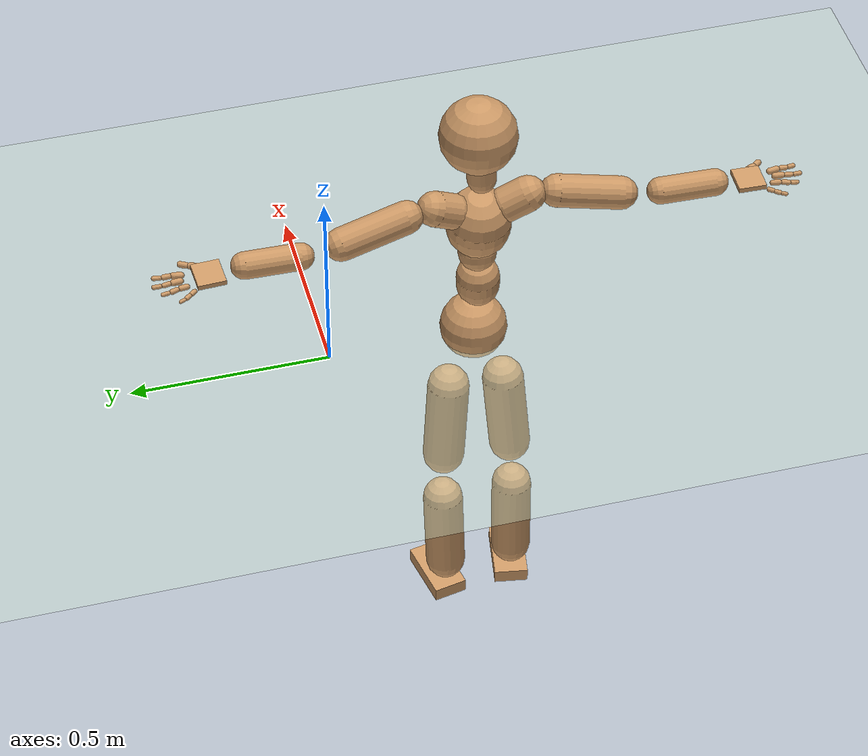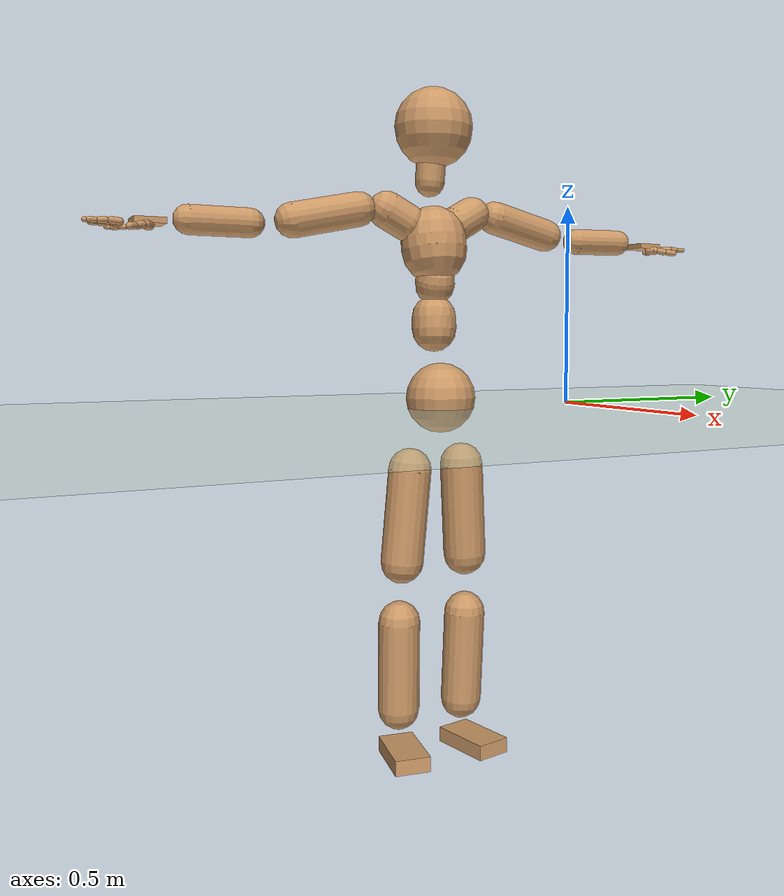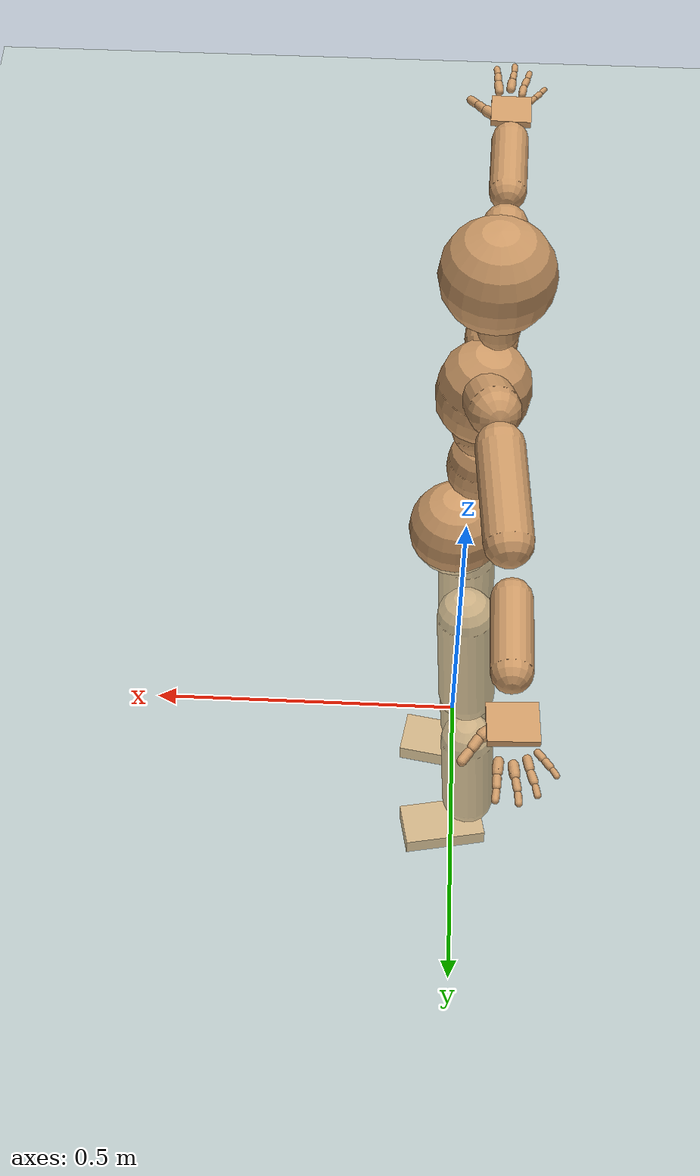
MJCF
<mujoco model="humanoid">
  <compiler coordinate="local" angle="radian"/>
  <default>
    <joint damping="0.0" armature="0.01" stiffness="0.0" limited="true"/>
    <geom conaffinity="1" condim="3" contype="7" margin="0.001" rgba="0.8 0.6 .4 1"/>
  </default>
  <asset>
    <texture type="skybox" builtin="gradient" rgb1=".4 .5 .6" rgb2="0 0 0" width="100" height="100"/>
    <texture builtin="flat" height="1278" mark="cross" markrgb="1 1 1" name="texgeom" random="0.01" rgb1="0.8 0.6 0.4" rgb2="0.8 0.6 0.4" type="cube" width="127"/>
    <texture builtin="checker" height="100" name="texplane" rgb1="0 0 0" rgb2="0.8 0.8 0.8" type="2d" width="100"/>
    <material name="MatPlane" reflectance="0.5" shininess="1" specular="1" texrepeat="60 60" texture="texplane"/>
    <material name="geom" texture="texgeom" texuniform="true"/>
  </asset>
  <worldbody>
    <light cutoff="100" diffuse="1 1 1" dir="-0 0 -1.3" directional="true" exponent="1" pos="0 0 1.3" specular=".1 .1 .1"/>
    <geom conaffinity="1" condim="3" name="floor" pos="0 0 0" rgba="0.8 0.9 0.8 1" size="100 100 .2" type="plane" material="MatPlane"/>
    <body name="Pelvis" pos="0.0003 -0.3683 0.0233">
      <freejoint name="Pelvis"/>
      <geom type="sphere" contype="1" conaffinity="1" density="500" size="0.0848" pos="0.0000 0.0000 0.0000" name="Pelvis"/>
      <body name="L_Hip" pos="-0.0219 0.0657 -0.0922">
        <joint name="L_Hip_x" type="hinge" pos="0 0 0" axis="1 0 0" stiffness="800" damping="80" armature="0.02" range="-180.0000 180.0000"/>
        <joint name="L_Hip_y" type="hinge" pos="0 0 0" axis="0 1 0" stiffness="800" damping="80" armature="0.02" range="-180.0000 180.0000"/>
        <joint name="L_Hip_z" type="hinge" pos="0 0 0" axis="0 0 1" stiffness="800" damping="80" armature="0.02" range="-180.0000 180.0000"/>
        <geom type="capsule" contype="1" conaffinity="1" density="500" fromto="-0.0042 0.0054 -0.0770 -0.0168 0.0216 -0.3081" size="0.053" name="L_Hip"/>
        <body name="L_Knee" pos="-0.021 0.027 -0.3852">
          <joint name="L_Knee_x" type="hinge" pos="0 0 0" axis="1 0 0" stiffness="800" damping="80" armature="0.02" range="-180.0000 180.0000"/>
          <joint name="L_Knee_y" type="hinge" pos="0 0 0" axis="0 1 0" stiffness="800" damping="80" armature="0.02" range="-180.0000 180.0000"/>
          <joint name="L_Knee_z" type="hinge" pos="0 0 0" axis="0 0 1" stiffness="800" damping="80" armature="0.02" range="-180.0000 180.0000"/>
          <geom type="capsule" contype="1" conaffinity="1" density="500" fromto="-0.0039 -0.0013 -0.0764 -0.0157 -0.0054 -0.3057" size="0.0513" name="L_Knee"/>
          <body name="L_Ankle" pos="-0.0197 -0.0067 -0.3821">
            <joint name="L_Ankle_x" type="hinge" pos="0 0 0" axis="1 0 0" stiffness="800" damping="80" armature="0.02" range="-180.0000 180.0000"/>
            <joint name="L_Ankle_y" type="hinge" pos="0 0 0" axis="0 1 0" stiffness="800" damping="80" armature="0.02" range="-180.0000 180.0000"/>
            <joint name="L_Ankle_z" type="hinge" pos="0 0 0" axis="0 0 1" stiffness="800" damping="80" armature="0.02" range="-180.0000 180.0000"/>
            <geom type="box" contype="1" conaffinity="1" density="500" pos="0.0528 0.0102 -0.0216" size="0.0812 0.0437 0.0187" quat="0.9954 0.0000 0.0000 0.0958" name="L_Ankle"/>
            <body name="L_Toe" pos="0.1055 0.0205 -0.0431">
              <joint name="L_Toe_x" type="hinge" pos="0 0 0" axis="1 0 0" stiffness="500" damping="50" armature="0.02" range="-180.0000 180.0000"/>
              <joint name="L_Toe_y" type="hinge" pos="0 0 0" axis="0 1 0" stiffness="500" damping="50" armature="0.02" range="-180.0000 180.0000"/>
              <joint name="L_Toe_z" type="hinge" pos="0 0 0" axis="0 0 1" stiffness="500" damping="50" armature="0.02" range="-180.0000 180.0000"/>
              <geom type="box" contype="1" conaffinity="1" density="500" pos="0.0000 0.0000 0.0228" size="0.0008 0.0022 0.001" quat="0.9947 0.0000 0.0000 0.1029" name="L_Toe"/>
            </body>
          </body>
        </body>
      </body>
      <body name="R_Hip" pos="-0.0232 -0.0648 -0.0991">
        <joint name="R_Hip_x" type="hinge" pos="0 0 0" axis="1 0 0" stiffness="800" damping="80" armature="0.02" range="-180.0000 180.0000"/>
        <joint name="R_Hip_y" type="hinge" pos="0 0 0" axis="0 1 0" stiffness="800" damping="80" armature="0.02" range="-180.0000 180.0000"/>
        <joint name="R_Hip_z" type="hinge" pos="0 0 0" axis="0 0 1" stiffness="800" damping="80" armature="0.02" range="-180.0000 180.0000"/>
        <geom type="capsule" contype="1" conaffinity="1" density="500" fromto="-0.0031 -0.0061 -0.0761 -0.0124 -0.0243 -0.3044" size="0.0528" name="R_Hip"/>
        <body name="R_Knee" pos="-0.0155 -0.0304 -0.3805">
          <joint name="R_Knee_x" type="hinge" pos="0 0 0" axis="1 0 0" stiffness="800" damping="80" armature="0.02" range="-180.0000 180.0000"/>
          <joint name="R_Knee_y" type="hinge" pos="0 0 0" axis="0 1 0" stiffness="800" damping="80" armature="0.02" range="-180.0000 180.0000"/>
          <joint name="R_Knee_z" type="hinge" pos="0 0 0" axis="0 0 1" stiffness="800" damping="80" armature="0.02" range="-180.0000 180.0000"/>
          <geom type="capsule" contype="1" conaffinity="1" density="500" fromto="-0.0031 0.0005 -0.0748 -0.0125 0.0021 -0.2990" size="0.0513" name="R_Knee"/>
          <body name="R_Ankle" pos="-0.0157 0.0027 -0.3738">
            <joint name="R_Ankle_x" type="hinge" pos="0 0 0" axis="1 0 0" stiffness="800" damping="80" armature="0.02" range="-180.0000 180.0000"/>
            <joint name="R_Ankle_y" type="hinge" pos="0 0 0" axis="0 1 0" stiffness="800" damping="80" armature="0.02" range="-180.0000 180.0000"/>
            <joint name="R_Ankle_z" type="hinge" pos="0 0 0" axis="0 0 1" stiffness="800" damping="80" armature="0.02" range="-180.0000 180.0000"/>
            <geom type="box" contype="1" conaffinity="1" density="500" pos="0.0495 -0.0084 -0.0236" size="0.0812 0.0437 0.0187" quat="0.9965 0.0000 0.0000 -0.0839" name="R_Ankle"/>
            <body name="R_Toe" pos="0.099 -0.0168 -0.0471">
              <joint name="R_Toe_x" type="hinge" pos="0 0 0" axis="1 0 0" stiffness="500" damping="50" armature="0.02" range="-180.0000 180.0000"/>
              <joint name="R_Toe_y" type="hinge" pos="0 0 0" axis="0 1 0" stiffness="500" damping="50" armature="0.02" range="-180.0000 180.0000"/>
              <joint name="R_Toe_z" type="hinge" pos="0 0 0" axis="0 0 1" stiffness="500" damping="50" armature="0.02" range="-180.0000 180.0000"/>
              <geom type="box" contype="1" conaffinity="1" density="500" pos="0.0000 0.0000 0.0247" size="0.0008 0.0022 0.001" quat="0.9974 0.0000 0.0000 -0.0727" name="R_Toe"/>
            </body>
          </body>
        </body>
      </body>
      <body name="Torso" pos="-0.0248 -0.0044 0.1056">
        <joint name="Torso_x" type="hinge" pos="0 0 0" axis="1 0 0" stiffness="1000" damping="100" armature="0.02" range="-180.0000 180.0000"/>
        <joint name="Torso_y" type="hinge" pos="0 0 0" axis="0 1 0" stiffness="1000" damping="100" armature="0.02" range="-180.0000 180.0000"/>
        <joint name="Torso_z" type="hinge" pos="0 0 0" axis="0 0 1" stiffness="1000" damping="100" armature="0.02" range="-180.0000 180.0000"/>
        <geom type="capsule" contype="1" conaffinity="1" density="500" fromto="-0.0070 0.0031 0.0887 -0.0047 0.0021 0.0592" size="0.0539" name="Torso"/>
        <body name="Spine" pos="-0.0117 0.0052 0.1479">
          <joint name="Spine_x" type="hinge" pos="0 0 0" axis="1 0 0" stiffness="1000" damping="100" armature="0.02" range="-180.0000 180.0000"/>
          <joint name="Spine_y" type="hinge" pos="0 0 0" axis="0 1 0" stiffness="1000" damping="100" armature="0.02" range="-180.0000 180.0000"/>
          <joint name="Spine_z" type="hinge" pos="0 0 0" axis="0 0 1" stiffness="1000" damping="100" armature="0.02" range="-180.0000 180.0000"/>
          <geom type="capsule" contype="1" conaffinity="1" density="500" fromto="0.0099 -0.0011 0.0293 0.0066 -0.0007 0.0195" size="0.0481" name="Spine"/>
          <body name="Chest" pos="0.0165 -0.0018 0.0489">
            <joint name="Chest_x" type="hinge" pos="0 0 0" axis="1 0 0" stiffness="1000" damping="100" armature="0.02" range="-180.0000 180.0000"/>
            <joint name="Chest_y" type="hinge" pos="0 0 0" axis="0 1 0" stiffness="1000" damping="100" armature="0.02" range="-180.0000 180.0000"/>
            <joint name="Chest_z" type="hinge" pos="0 0 0" axis="0 0 1" stiffness="1000" damping="100" armature="0.02" range="-180.0000 180.0000"/>
            <geom type="capsule" contype="1" conaffinity="1" density="500" fromto="-0.0116 -0.0015 0.0803 -0.0077 -0.0010 0.0536" size="0.0797" name="Chest"/>
            <body name="Neck" pos="-0.0285 -0.0051 0.1864">
              <joint name="Neck_x" type="hinge" pos="0 0 0" axis="1 0 0" stiffness="500" damping="50" armature="0.02" range="-180.0000 180.0000"/>
              <joint name="Neck_y" type="hinge" pos="0 0 0" axis="0 1 0" stiffness="500" damping="50" armature="0.02" range="-180.0000 180.0000"/>
              <joint name="Neck_z" type="hinge" pos="0 0 0" axis="0 0 1" stiffness="500" damping="50" armature="0.02" range="-180.0000 180.0000"/>
              <geom type="capsule" contype="1" conaffinity="1" density="500" fromto="0.0022 0.0016 0.0318 0.0089 0.0065 0.1273" size="0.0361" name="Neck"/>
              <body name="Head" pos="0.0111 0.0081 0.1591">
                <joint name="Head_x" type="hinge" pos="0 0 0" axis="1 0 0" stiffness="500" damping="50" armature="0.02" range="-180.0000 180.0000"/>
                <joint name="Head_y" type="hinge" pos="0 0 0" axis="0 1 0" stiffness="500" damping="50" armature="0.02" range="-180.0000 180.0000"/>
                <joint name="Head_z" type="hinge" pos="0 0 0" axis="0 0 1" stiffness="500" damping="50" armature="0.02" range="-180.0000 180.0000"/>
                <geom type="sphere" contype="1" conaffinity="1" density="500" size="0.0950" pos="0.0000 0.0000 0.0000" name="Head"/>
              </body>
            </body>
            <body name="L_Thorax" pos="-0.0125 0.0452 0.1093">
              <joint name="L_Thorax_x" type="hinge" pos="0 0 0" axis="1 0 0" stiffness="500" damping="50" armature="0.02" range="-180.0000 180.0000"/>
              <joint name="L_Thorax_y" type="hinge" pos="0 0 0" axis="0 1 0" stiffness="500" damping="50" armature="0.02" range="-180.0000 180.0000"/>
              <joint name="L_Thorax_z" type="hinge" pos="0 0 0" axis="0 0 1" stiffness="500" damping="50" armature="0.02" range="-180.0000 180.0000"/>
              <geom type="capsule" contype="1" conaffinity="1" density="500" fromto="-0.0031 0.0164 0.0091 -0.0122 0.0657 0.0363" size="0.0439" name="L_Thorax"/>
              <body name="L_Shoulder" pos="-0.0153 0.0821 0.0454">
                <joint name="L_Shoulder_x" type="hinge" pos="0 0 0" axis="1 0 0" stiffness="500" damping="50" armature="0.02" range="-180.0000 180.0000"/>
                <joint name="L_Shoulder_y" type="hinge" pos="0 0 0" axis="0 1 0" stiffness="500" damping="50" armature="0.02" range="-180.0000 180.0000"/>
                <joint name="L_Shoulder_z" type="hinge" pos="0 0 0" axis="0 0 1" stiffness="500" damping="50" armature="0.02" range="-180.0000 180.0000"/>
                <geom type="capsule" contype="1" conaffinity="1" density="500" fromto="-0.0052 0.0546 -0.0117 -0.0208 0.2183 -0.0469" size="0.0409" name="L_Shoulder"/>
                <body name="L_Elbow" pos="-0.026 0.2728 -0.0586">
                  <joint name="L_Elbow_x" type="hinge" pos="0 0 0" axis="1 0 0" stiffness="500" damping="50" armature="0.02" range="-720.0000 720.0000"/>
                  <joint name="L_Elbow_y" type="hinge" pos="0 0 0" axis="0 1 0" stiffness="500" damping="50" armature="0.02" range="-720.0000 720.0000"/>
                  <joint name="L_Elbow_z" type="hinge" pos="0 0 0" axis="0 0 1" stiffness="500" damping="50" armature="0.02" range="-720.0000 720.0000"/>
                  <geom type="capsule" contype="1" conaffinity="1" density="500" fromto="0.0001 0.0451 0.0009 0.0005 0.1806 0.0036" size="0.0334" name="L_Elbow"/>
                  <body name="L_Wrist" pos="0.0007 0.2257 0.0046">
                    <joint name="L_Wrist_x" type="hinge" pos="0 0 0" axis="1 0 0" stiffness="300" damping="30" armature="0.02" range="-180.0000 180.0000"/>
                    <joint name="L_Wrist_y" type="hinge" pos="0 0 0" axis="0 1 0" stiffness="300" damping="30" armature="0.02" range="-180.0000 180.0000"/>
                    <joint name="L_Wrist_z" type="hinge" pos="0 0 0" axis="0 0 1" stiffness="300" damping="30" armature="0.02" range="-180.0000 180.0000"/>
                    <geom type="box" contype="1" conaffinity="1" density="500" pos="-0.0018 0.0413 -0.0083" size="0.0345 0.0392 0.0063" quat="0.7222 0.0000 0.0000 -0.6917" name="L_Wrist"/>
                    <body name="L_Index1" pos="0.0185 0.097 -0.0151">
                      <joint name="L_Index1_x" type="hinge" pos="0 0 0" axis="1 0 0" stiffness="100" damping="10" armature="0.02" range="-180.0000 180.0000"/>
                      <joint name="L_Index1_y" type="hinge" pos="0 0 0" axis="0 1 0" stiffness="100" damping="10" armature="0.02" range="-180.0000 180.0000"/>
                      <joint name="L_Index1_z" type="hinge" pos="0 0 0" axis="0 0 1" stiffness="100" damping="10" armature="0.02" range="-180.0000 180.0000"/>
                      <geom type="capsule" contype="1" conaffinity="1" density="500" fromto="0.0005 0.0061 0.0005 0.0021 0.0243 0.0019" size="0.0081" name="L_Index1"/>
                      <body name="L_Index2" pos="0.0026 0.0303 0.0024">
                        <joint name="L_Index2_x" type="hinge" pos="0 0 0" axis="1 0 0" stiffness="100" damping="10" armature="0.02" range="-180.0000 180.0000"/>
                        <joint name="L_Index2_y" type="hinge" pos="0 0 0" axis="0 1 0" stiffness="100" damping="10" armature="0.02" range="-180.0000 180.0000"/>
                        <joint name="L_Index2_z" type="hinge" pos="0 0 0" axis="0 0 1" stiffness="100" damping="10" armature="0.02" range="-180.0000 180.0000"/>
                        <geom type="capsule" contype="1" conaffinity="1" density="500" fromto="0.0001 0.0043 -0.0003 0.0004 0.0173 -0.0012" size="0.0068" name="L_Index2"/>
                        <body name="L_Index3" pos="0.0005 0.0216 -0.0015">
                          <joint name="L_Index3_x" type="hinge" pos="0 0 0" axis="1 0 0" stiffness="100" damping="10" armature="0.02" range="-180.0000 180.0000"/>
                          <joint name="L_Index3_y" type="hinge" pos="0 0 0" axis="0 1 0" stiffness="100" damping="10" armature="0.02" range="-180.0000 180.0000"/>
                          <joint name="L_Index3_z" type="hinge" pos="0 0 0" axis="0 0 1" stiffness="100" damping="10" armature="0.02" range="-180.0000 180.0000"/>
                          <geom type="capsule" contype="1" conaffinity="1" density="500" fromto="0.0005 0.0047 0.0001 0.0020 0.0189 0.0004" size="0.0058" name="L_Index3"/>
                        </body>
                      </body>
                    </body>
                    <body name="L_Middle1" pos="-0.0017 0.1032 -0.0129">
                      <joint name="L_Middle1_x" type="hinge" pos="0 0 0" axis="1 0 0" stiffness="100" damping="10" armature="0.02" range="-180.0000 180.0000"/>
                      <joint name="L_Middle1_y" type="hinge" pos="0 0 0" axis="0 1 0" stiffness="100" damping="10" armature="0.02" range="-180.0000 180.0000"/>
                      <joint name="L_Middle1_z" type="hinge" pos="0 0 0" axis="0 0 1" stiffness="100" damping="10" armature="0.02" range="-180.0000 180.0000"/>
                      <geom type="capsule" contype="1" conaffinity="1" density="500" fromto="-0.0007 0.0057 0.0002 -0.0028 0.0228 0.0009" size="0.0082" name="L_Middle1"/>
                      <body name="L_Middle2" pos="-0.0035 0.0285 0.0012">
                        <joint name="L_Middle2_x" type="hinge" pos="0 0 0" axis="1 0 0" stiffness="100" damping="10" armature="0.02" range="-180.0000 180.0000"/>
                        <joint name="L_Middle2_y" type="hinge" pos="0 0 0" axis="0 1 0" stiffness="100" damping="10" armature="0.02" range="-180.0000 180.0000"/>
                        <joint name="L_Middle2_z" type="hinge" pos="0 0 0" axis="0 0 1" stiffness="100" damping="10" armature="0.02" range="-180.0000 180.0000"/>
                        <geom type="capsule" contype="1" conaffinity="1" density="500" fromto="-0.0007 0.0044 -0.0001 -0.0028 0.0177 -0.0003" size="0.0062" name="L_Middle2"/>
                        <body name="L_Middle3" pos="-0.0035 0.0222 -0.0004">
                          <joint name="L_Middle3_x" type="hinge" pos="0 0 0" axis="1 0 0" stiffness="100" damping="10" armature="0.02" range="-180.0000 180.0000"/>
                          <joint name="L_Middle3_y" type="hinge" pos="0 0 0" axis="0 1 0" stiffness="100" damping="10" armature="0.02" range="-180.0000 180.0000"/>
                          <joint name="L_Middle3_z" type="hinge" pos="0 0 0" axis="0 0 1" stiffness="100" damping="10" armature="0.02" range="-180.0000 180.0000"/>
                          <geom type="capsule" contype="1" conaffinity="1" density="500" fromto="-0.0003 0.0048 0.0003 -0.0012 0.0193 0.0013" size="0.0056" name="L_Middle3"/>
                        </body>
                      </body>
                    </body>
                    <body name="L_Pinky1" pos="-0.0363 0.0795 -0.0194">
                      <joint name="L_Pinky1_x" type="hinge" pos="0 0 0" axis="1 0 0" stiffness="100" damping="10" armature="0.02" range="-180.0000 180.0000"/>
                      <joint name="L_Pinky1_y" type="hinge" pos="0 0 0" axis="0 1 0" stiffness="100" damping="10" armature="0.02" range="-180.0000 180.0000"/>
                      <joint name="L_Pinky1_z" type="hinge" pos="0 0 0" axis="0 0 1" stiffness="100" damping="10" armature="0.02" range="-180.0000 180.0000"/>
                      <geom type="capsule" contype="1" conaffinity="1" density="500" fromto="-0.0022 0.0028 -0.0000 -0.0088 0.0110 -0.0001" size="0.006" name="L_Pinky1"/>
                      <body name="L_Pinky2" pos="-0.011 0.0138 -0.0002">
                        <joint name="L_Pinky2_x" type="hinge" pos="0 0 0" axis="1 0 0" stiffness="100" damping="10" armature="0.02" range="-180.0000 180.0000"/>
                        <joint name="L_Pinky2_y" type="hinge" pos="0 0 0" axis="0 1 0" stiffness="100" damping="10" armature="0.02" range="-180.0000 180.0000"/>
                        <joint name="L_Pinky2_z" type="hinge" pos="0 0 0" axis="0 0 1" stiffness="100" damping="10" armature="0.02" range="-180.0000 180.0000"/>
                        <geom type="capsule" contype="1" conaffinity="1" density="500" fromto="-0.0022 0.0028 -0.0001 -0.0087 0.0113 -0.0005" size="0.0058" name="L_Pinky2"/>
                        <body name="L_Pinky3" pos="-0.0109 0.0141 -0.0006">
                          <joint name="L_Pinky3_x" type="hinge" pos="0 0 0" axis="1 0 0" stiffness="100" damping="10" armature="0.02" range="-180.0000 180.0000"/>
                          <joint name="L_Pinky3_y" type="hinge" pos="0 0 0" axis="0 1 0" stiffness="100" damping="10" armature="0.02" range="-180.0000 180.0000"/>
                          <joint name="L_Pinky3_z" type="hinge" pos="0 0 0" axis="0 0 1" stiffness="100" damping="10" armature="0.02" range="-180.0000 180.0000"/>
                          <geom type="capsule" contype="1" conaffinity="1" density="500" fromto="-0.0018 0.0032 0.0003 -0.0071 0.0129 0.0011" size="0.0047" name="L_Pinky3"/>
                        </body>
                      </body>
                    </body>
                    <body name="L_Ring1" pos="-0.0218 0.0917 -0.0151">
                      <joint name="L_Ring1_x" type="hinge" pos="0 0 0" axis="1 0 0" stiffness="100" damping="10" armature="0.02" range="-180.0000 180.0000"/>
                      <joint name="L_Ring1_y" type="hinge" pos="0 0 0" axis="0 1 0" stiffness="100" damping="10" armature="0.02" range="-180.0000 180.0000"/>
                      <joint name="L_Ring1_z" type="hinge" pos="0 0 0" axis="0 0 1" stiffness="100" damping="10" armature="0.02" range="-180.0000 180.0000"/>
                      <geom type="capsule" contype="1" conaffinity="1" density="500" fromto="-0.0010 0.0051 0.0003 -0.0039 0.0205 0.0012" size="0.0071" name="L_Ring1"/>
                      <body name="L_Ring2" pos="-0.0049 0.0256 0.0015">
                        <joint name="L_Ring2_x" type="hinge" pos="0 0 0" axis="1 0 0" stiffness="100" damping="10" armature="0.02" range="-180.0000 180.0000"/>
                        <joint name="L_Ring2_y" type="hinge" pos="0 0 0" axis="0 1 0" stiffness="100" damping="10" armature="0.02" range="-180.0000 180.0000"/>
                        <joint name="L_Ring2_z" type="hinge" pos="0 0 0" axis="0 0 1" stiffness="100" damping="10" armature="0.02" range="-180.0000 180.0000"/>
                        <geom type="capsule" contype="1" conaffinity="1" density="500" fromto="-0.0013 0.0043 -0.0002 -0.0053 0.0170 -0.0007" size="0.0066" name="L_Ring2"/>
                        <body name="L_Ring3" pos="-0.0066 0.0213 -0.0008">
                          <joint name="L_Ring3_x" type="hinge" pos="0 0 0" axis="1 0 0" stiffness="100" damping="10" armature="0.02" range="-180.0000 180.0000"/>
                          <joint name="L_Ring3_y" type="hinge" pos="0 0 0" axis="0 1 0" stiffness="100" damping="10" armature="0.02" range="-180.0000 180.0000"/>
                          <joint name="L_Ring3_z" type="hinge" pos="0 0 0" axis="0 0 1" stiffness="100" damping="10" armature="0.02" range="-180.0000 180.0000"/>
                          <geom type="capsule" contype="1" conaffinity="1" density="500" fromto="-0.0009 0.0047 0.0002 -0.0037 0.0186 0.0009" size="0.0053" name="L_Ring3"/>
                        </body>
                      </body>
                    </body>
                    <body name="L_Thumb1" pos="0.0235 0.0412 -0.021">
                      <joint name="L_Thumb1_x" type="hinge" pos="0 0 0" axis="1 0 0" stiffness="100" damping="10" armature="0.02" range="-180.0000 180.0000"/>
                      <joint name="L_Thumb1_y" type="hinge" pos="0 0 0" axis="0 1 0" stiffness="100" damping="10" armature="0.02" range="-180.0000 180.0000"/>
                      <joint name="L_Thumb1_z" type="hinge" pos="0 0 0" axis="0 0 1" stiffness="100" damping="10" armature="0.02" range="-180.0000 180.0000"/>
                      <geom type="capsule" contype="1" conaffinity="1" density="500" fromto="0.0044 0.0034 0.0001 0.0175 0.0135 0.0002" size="0.0106" name="L_Thumb1"/>
                      <body name="L_Thumb2" pos="0.0219 0.0169 0.0003">
                        <joint name="L_Thumb2_x" type="hinge" pos="0 0 0" axis="1 0 0" stiffness="100" damping="10" armature="0.02" range="-180.0000 180.0000"/>
                        <joint name="L_Thumb2_y" type="hinge" pos="0 0 0" axis="0 1 0" stiffness="100" damping="10" armature="0.02" range="-180.0000 180.0000"/>
                        <joint name="L_Thumb2_z" type="hinge" pos="0 0 0" axis="0 0 1" stiffness="100" damping="10" armature="0.02" range="-180.0000 180.0000"/>
                        <geom type="capsule" contype="1" conaffinity="1" density="500" fromto="0.0027 0.0040 -0.0010 0.0107 0.0160 -0.0041" size="0.0084" name="L_Thumb2"/>
                        <body name="L_Thumb3" pos="0.0134 0.02 -0.0051">
                          <joint name="L_Thumb3_x" type="hinge" pos="0 0 0" axis="1 0 0" stiffness="100" damping="10" armature="0.02" range="-180.0000 180.0000"/>
                          <joint name="L_Thumb3_y" type="hinge" pos="0 0 0" axis="0 1 0" stiffness="100" damping="10" armature="0.02" range="-180.0000 180.0000"/>
                          <joint name="L_Thumb3_z" type="hinge" pos="0 0 0" axis="0 0 1" stiffness="100" damping="10" armature="0.02" range="-180.0000 180.0000"/>
                          <geom type="capsule" contype="1" conaffinity="1" density="500" fromto="0.0031 0.0044 -0.0006 0.0123 0.0176 -0.0025" size="0.0078" name="L_Thumb3"/>
                        </body>
                      </body>
                    </body>
                  </body>
                </body>
              </body>
            </body>
            <body name="R_Thorax" pos="-0.0168 -0.0477 0.106">
              <joint name="R_Thorax_x" type="hinge" pos="0 0 0" axis="1 0 0" stiffness="500" damping="50" armature="0.02" range="-180.0000 180.0000"/>
              <joint name="R_Thorax_y" type="hinge" pos="0 0 0" axis="0 1 0" stiffness="500" damping="50" armature="0.02" range="-180.0000 180.0000"/>
              <joint name="R_Thorax_z" type="hinge" pos="0 0 0" axis="0 0 1" stiffness="500" damping="50" armature="0.02" range="-180.0000 180.0000"/>
              <geom type="capsule" contype="1" conaffinity="1" density="500" fromto="-0.0022 -0.0176 0.0096 -0.0089 -0.0705 0.0386" size="0.0447" name="R_Thorax"/>
              <body name="R_Shoulder" pos="-0.0111 -0.0881 0.0482">
                <joint name="R_Shoulder_x" type="hinge" pos="0 0 0" axis="1 0 0" stiffness="500" damping="50" armature="0.02" range="-180.0000 180.0000"/>
                <joint name="R_Shoulder_y" type="hinge" pos="0 0 0" axis="0 1 0" stiffness="500" damping="50" armature="0.02" range="-180.0000 180.0000"/>
                <joint name="R_Shoulder_z" type="hinge" pos="0 0 0" axis="0 0 1" stiffness="500" damping="50" armature="0.02" range="-180.0000 180.0000"/>
                <geom type="capsule" contype="1" conaffinity="1" density="500" fromto="-0.0038 -0.0526 -0.0110 -0.0153 -0.2105 -0.0438" size="0.0412" name="R_Shoulder"/>
                <body name="R_Elbow" pos="-0.0191 -0.2632 -0.0548">
                  <joint name="R_Elbow_x" type="hinge" pos="0 0 0" axis="1 0 0" stiffness="500" damping="50" armature="0.02" range="-720.0000 720.0000"/>
                  <joint name="R_Elbow_y" type="hinge" pos="0 0 0" axis="0 1 0" stiffness="500" damping="50" armature="0.02" range="-720.0000 720.0000"/>
                  <joint name="R_Elbow_z" type="hinge" pos="0 0 0" axis="0 0 1" stiffness="500" damping="50" armature="0.02" range="-720.0000 720.0000"/>
                  <geom type="capsule" contype="1" conaffinity="1" density="500" fromto="-0.0015 -0.0454 0.0001 -0.0059 -0.1815 0.0005" size="0.0336" name="R_Elbow"/>
                  <body name="R_Wrist" pos="-0.0073 -0.2269 0.0006">
                    <joint name="R_Wrist_x" type="hinge" pos="0 0 0" axis="1 0 0" stiffness="300" damping="30" armature="0.02" range="-180.0000 180.0000"/>
                    <joint name="R_Wrist_y" type="hinge" pos="0 0 0" axis="0 1 0" stiffness="300" damping="30" armature="0.02" range="-180.0000 180.0000"/>
                    <joint name="R_Wrist_z" type="hinge" pos="0 0 0" axis="0 0 1" stiffness="300" damping="30" armature="0.02" range="-180.0000 180.0000"/>
                    <geom type="box" contype="1" conaffinity="1" density="500" pos="-0.0012 -0.0407 -0.0080" size="0.0345 0.0367 0.0065" quat="0.7171 0.0000 0.0000 0.6970" name="R_Wrist"/>
                    <body name="R_Index1" pos="0.0197 -0.0959 -0.0144">
                      <joint name="R_Index1_x" type="hinge" pos="0 0 0" axis="1 0 0" stiffness="100" damping="10" armature="0.02" range="-180.0000 180.0000"/>
                      <joint name="R_Index1_y" type="hinge" pos="0 0 0" axis="0 1 0" stiffness="100" damping="10" armature="0.02" range="-180.0000 180.0000"/>
                      <joint name="R_Index1_z" type="hinge" pos="0 0 0" axis="0 0 1" stiffness="100" damping="10" armature="0.02" range="-180.0000 180.0000"/>
                      <geom type="capsule" contype="1" conaffinity="1" density="500" fromto="0.0005 -0.0061 0.0005 0.0021 -0.0243 0.0019" size="0.0081" name="R_Index1"/>
                      <body name="R_Index2" pos="0.0026 -0.0303 0.0024">
                        <joint name="R_Index2_x" type="hinge" pos="0 0 0" axis="1 0 0" stiffness="100" damping="10" armature="0.02" range="-180.0000 180.0000"/>
                        <joint name="R_Index2_y" type="hinge" pos="0 0 0" axis="0 1 0" stiffness="100" damping="10" armature="0.02" range="-180.0000 180.0000"/>
                        <joint name="R_Index2_z" type="hinge" pos="0 0 0" axis="0 0 1" stiffness="100" damping="10" armature="0.02" range="-180.0000 180.0000"/>
                        <geom type="capsule" contype="1" conaffinity="1" density="500" fromto="0.0001 -0.0043 -0.0003 0.0004 -0.0173 -0.0012" size="0.0068" name="R_Index2"/>
                        <body name="R_Index3" pos="0.0005 -0.0216 -0.0015">
                          <joint name="R_Index3_x" type="hinge" pos="0 0 0" axis="1 0 0" stiffness="100" damping="10" armature="0.02" range="-180.0000 180.0000"/>
                          <joint name="R_Index3_y" type="hinge" pos="0 0 0" axis="0 1 0" stiffness="100" damping="10" armature="0.02" range="-180.0000 180.0000"/>
                          <joint name="R_Index3_z" type="hinge" pos="0 0 0" axis="0 0 1" stiffness="100" damping="10" armature="0.02" range="-180.0000 180.0000"/>
                          <geom type="capsule" contype="1" conaffinity="1" density="500" fromto="0.0005 -0.0039 0.0001 0.0020 -0.0157 0.0004" size="0.006" name="R_Index3"/>
                        </body>
                      </body>
                    </body>
                    <body name="R_Middle1" pos="-0.0004 -0.1021 -0.0123">
                      <joint name="R_Middle1_x" type="hinge" pos="0 0 0" axis="1 0 0" stiffness="100" damping="10" armature="0.02" range="-180.0000 180.0000"/>
                      <joint name="R_Middle1_y" type="hinge" pos="0 0 0" axis="0 1 0" stiffness="100" damping="10" armature="0.02" range="-180.0000 180.0000"/>
                      <joint name="R_Middle1_z" type="hinge" pos="0 0 0" axis="0 0 1" stiffness="100" damping="10" armature="0.02" range="-180.0000 180.0000"/>
                      <geom type="capsule" contype="1" conaffinity="1" density="500" fromto="-0.0007 -0.0057 0.0002 -0.0028 -0.0228 0.0009" size="0.0082" name="R_Middle1"/>
                      <body name="R_Middle2" pos="-0.0035 -0.0285 0.0012">
                        <joint name="R_Middle2_x" type="hinge" pos="0 0 0" axis="1 0 0" stiffness="100" damping="10" armature="0.02" range="-180.0000 180.0000"/>
                        <joint name="R_Middle2_y" type="hinge" pos="0 0 0" axis="0 1 0" stiffness="100" damping="10" armature="0.02" range="-180.0000 180.0000"/>
                        <joint name="R_Middle2_z" type="hinge" pos="0 0 0" axis="0 0 1" stiffness="100" damping="10" armature="0.02" range="-180.0000 180.0000"/>
                        <geom type="capsule" contype="1" conaffinity="1" density="500" fromto="-0.0007 -0.0044 -0.0001 -0.0028 -0.0177 -0.0003" size="0.0062" name="R_Middle2"/>
                        <body name="R_Middle3" pos="-0.0035 -0.0222 -0.0004">
                          <joint name="R_Middle3_x" type="hinge" pos="0 0 0" axis="1 0 0" stiffness="100" damping="10" armature="0.02" range="-180.0000 180.0000"/>
                          <joint name="R_Middle3_y" type="hinge" pos="0 0 0" axis="0 1 0" stiffness="100" damping="10" armature="0.02" range="-180.0000 180.0000"/>
                          <joint name="R_Middle3_z" type="hinge" pos="0 0 0" axis="0 0 1" stiffness="100" damping="10" armature="0.02" range="-180.0000 180.0000"/>
                          <geom type="capsule" contype="1" conaffinity="1" density="500" fromto="-0.0003 -0.0040 0.0003 -0.0012 -0.0161 0.0013" size="0.0058" name="R_Middle3"/>
                        </body>
                      </body>
                    </body>
                    <body name="R_Pinky1" pos="-0.035 -0.0784 -0.0188">
                      <joint name="R_Pinky1_x" type="hinge" pos="0 0 0" axis="1 0 0" stiffness="100" damping="10" armature="0.02" range="-180.0000 180.0000"/>
                      <joint name="R_Pinky1_y" type="hinge" pos="0 0 0" axis="0 1 0" stiffness="100" damping="10" armature="0.02" range="-180.0000 180.0000"/>
                      <joint name="R_Pinky1_z" type="hinge" pos="0 0 0" axis="0 0 1" stiffness="100" damping="10" armature="0.02" range="-180.0000 180.0000"/>
                      <geom type="capsule" contype="1" conaffinity="1" density="500" fromto="-0.0022 -0.0028 -0.0000 -0.0088 -0.0110 -0.0001" size="0.006" name="R_Pinky1"/>
                      <body name="R_Pinky2" pos="-0.011 -0.0138 -0.0002">
                        <joint name="R_Pinky2_x" type="hinge" pos="0 0 0" axis="1 0 0" stiffness="100" damping="10" armature="0.02" range="-180.0000 180.0000"/>
                        <joint name="R_Pinky2_y" type="hinge" pos="0 0 0" axis="0 1 0" stiffness="100" damping="10" armature="0.02" range="-180.0000 180.0000"/>
                        <joint name="R_Pinky2_z" type="hinge" pos="0 0 0" axis="0 0 1" stiffness="100" damping="10" armature="0.02" range="-180.0000 180.0000"/>
                        <geom type="capsule" contype="1" conaffinity="1" density="500" fromto="-0.0022 -0.0028 -0.0001 -0.0087 -0.0113 -0.0005" size="0.0058" name="R_Pinky2"/>
                        <body name="R_Pinky3" pos="-0.0109 -0.0141 -0.0006">
                          <joint name="R_Pinky3_x" type="hinge" pos="0 0 0" axis="1 0 0" stiffness="100" damping="10" armature="0.02" range="-180.0000 180.0000"/>
                          <joint name="R_Pinky3_y" type="hinge" pos="0 0 0" axis="0 1 0" stiffness="100" damping="10" armature="0.02" range="-180.0000 180.0000"/>
                          <joint name="R_Pinky3_z" type="hinge" pos="0 0 0" axis="0 0 1" stiffness="100" damping="10" armature="0.02" range="-180.0000 180.0000"/>
                          <geom type="capsule" contype="1" conaffinity="1" density="500" fromto="-0.0018 -0.0024 0.0003 -0.0071 -0.0097 0.0011" size="0.0049" name="R_Pinky3"/>
                        </body>
                      </body>
                    </body>
                    <body name="R_Ring1" pos="-0.0206 -0.0906 -0.0144">
                      <joint name="R_Ring1_x" type="hinge" pos="0 0 0" axis="1 0 0" stiffness="100" damping="10" armature="0.02" range="-180.0000 180.0000"/>
                      <joint name="R_Ring1_y" type="hinge" pos="0 0 0" axis="0 1 0" stiffness="100" damping="10" armature="0.02" range="-180.0000 180.0000"/>
                      <joint name="R_Ring1_z" type="hinge" pos="0 0 0" axis="0 0 1" stiffness="100" damping="10" armature="0.02" range="-180.0000 180.0000"/>
                      <geom type="capsule" contype="1" conaffinity="1" density="500" fromto="-0.0010 -0.0051 0.0003 -0.0039 -0.0205 0.0012" size="0.0071" name="R_Ring1"/>
                      <body name="R_Ring2" pos="-0.0049 -0.0256 0.0015">
                        <joint name="R_Ring2_x" type="hinge" pos="0 0 0" axis="1 0 0" stiffness="100" damping="10" armature="0.02" range="-180.0000 180.0000"/>
                        <joint name="R_Ring2_y" type="hinge" pos="0 0 0" axis="0 1 0" stiffness="100" damping="10" armature="0.02" range="-180.0000 180.0000"/>
                        <joint name="R_Ring2_z" type="hinge" pos="0 0 0" axis="0 0 1" stiffness="100" damping="10" armature="0.02" range="-180.0000 180.0000"/>
                        <geom type="capsule" contype="1" conaffinity="1" density="500" fromto="-0.0013 -0.0043 -0.0002 -0.0053 -0.0170 -0.0007" size="0.0066" name="R_Ring2"/>
                        <body name="R_Ring3" pos="-0.0066 -0.0213 -0.0008">
                          <joint name="R_Ring3_x" type="hinge" pos="0 0 0" axis="1 0 0" stiffness="100" damping="10" armature="0.02" range="-180.0000 180.0000"/>
                          <joint name="R_Ring3_y" type="hinge" pos="0 0 0" axis="0 1 0" stiffness="100" damping="10" armature="0.02" range="-180.0000 180.0000"/>
                          <joint name="R_Ring3_z" type="hinge" pos="0 0 0" axis="0 0 1" stiffness="100" damping="10" armature="0.02" range="-180.0000 180.0000"/>
                          <geom type="capsule" contype="1" conaffinity="1" density="500" fromto="-0.0009 -0.0039 0.0002 -0.0037 -0.0154 0.0009" size="0.0056" name="R_Ring3"/>
                        </body>
                      </body>
                    </body>
                    <body name="R_Thumb1" pos="0.0247 -0.0401 -0.0203">
                      <joint name="R_Thumb1_x" type="hinge" pos="0 0 0" axis="1 0 0" stiffness="100" damping="10" armature="0.02" range="-180.0000 180.0000"/>
                      <joint name="R_Thumb1_y" type="hinge" pos="0 0 0" axis="0 1 0" stiffness="100" damping="10" armature="0.02" range="-180.0000 180.0000"/>
                      <joint name="R_Thumb1_z" type="hinge" pos="0 0 0" axis="0 0 1" stiffness="100" damping="10" armature="0.02" range="-180.0000 180.0000"/>
                      <geom type="capsule" contype="1" conaffinity="1" density="500" fromto="0.0044 -0.0034 0.0001 0.0175 -0.0135 0.0002" size="0.0106" name="R_Thumb1"/>
                      <body name="R_Thumb2" pos="0.0219 -0.0169 0.0003">
                        <joint name="R_Thumb2_x" type="hinge" pos="0 0 0" axis="1 0 0" stiffness="100" damping="10" armature="0.02" range="-180.0000 180.0000"/>
                        <joint name="R_Thumb2_y" type="hinge" pos="0 0 0" axis="0 1 0" stiffness="100" damping="10" armature="0.02" range="-180.0000 180.0000"/>
                        <joint name="R_Thumb2_z" type="hinge" pos="0 0 0" axis="0 0 1" stiffness="100" damping="10" armature="0.02" range="-180.0000 180.0000"/>
                        <geom type="capsule" contype="1" conaffinity="1" density="500" fromto="0.0027 -0.0040 -0.0010 0.0107 -0.0160 -0.0041" size="0.0084" name="R_Thumb2"/>
                        <body name="R_Thumb3" pos="0.0134 -0.02 -0.0051">
                          <joint name="R_Thumb3_x" type="hinge" pos="0 0 0" axis="1 0 0" stiffness="100" damping="10" armature="0.02" range="-180.0000 180.0000"/>
                          <joint name="R_Thumb3_y" type="hinge" pos="0 0 0" axis="0 1 0" stiffness="100" damping="10" armature="0.02" range="-180.0000 180.0000"/>
                          <joint name="R_Thumb3_z" type="hinge" pos="0 0 0" axis="0 0 1" stiffness="100" damping="10" armature="0.02" range="-180.0000 180.0000"/>
                          <geom type="capsule" contype="1" conaffinity="1" density="500" fromto="0.0031 -0.0036 -0.0006 0.0123 -0.0144 -0.0025" size="0.008" name="R_Thumb3"/>
                        </body>
                      </body>
                    </body>
                  </body>
                </body>
              </body>
            </body>
          </body>
        </body>
      </body>
    </body>
  </worldbody>
  <actuator>
    <motor name="L_Hip_x" joint="L_Hip_x" gear="500"/>
    <motor name="L_Hip_y" joint="L_Hip_y" gear="500"/>
    <motor name="L_Hip_z" joint="L_Hip_z" gear="500"/>
    <motor name="L_Knee_x" joint="L_Knee_x" gear="500"/>
    <motor name="L_Knee_y" joint="L_Knee_y" gear="500"/>
    <motor name="L_Knee_z" joint="L_Knee_z" gear="500"/>
    <motor name="L_Ankle_x" joint="L_Ankle_x" gear="500"/>
    <motor name="L_Ankle_y" joint="L_Ankle_y" gear="500"/>
    <motor name="L_Ankle_z" joint="L_Ankle_z" gear="500"/>
    <motor name="L_Toe_x" joint="L_Toe_x" gear="500"/>
    <motor name="L_Toe_y" joint="L_Toe_y" gear="500"/>
    <motor name="L_Toe_z" joint="L_Toe_z" gear="500"/>
    <motor name="R_Hip_x" joint="R_Hip_x" gear="500"/>
    <motor name="R_Hip_y" joint="R_Hip_y" gear="500"/>
    <motor name="R_Hip_z" joint="R_Hip_z" gear="500"/>
    <motor name="R_Knee_x" joint="R_Knee_x" gear="500"/>
    <motor name="R_Knee_y" joint="R_Knee_y" gear="500"/>
    <motor name="R_Knee_z" joint="R_Knee_z" gear="500"/>
    <motor name="R_Ankle_x" joint="R_Ankle_x" gear="500"/>
    <motor name="R_Ankle_y" joint="R_Ankle_y" gear="500"/>
    <motor name="R_Ankle_z" joint="R_Ankle_z" gear="500"/>
    <motor name="R_Toe_x" joint="R_Toe_x" gear="500"/>
    <motor name="R_Toe_y" joint="R_Toe_y" gear="500"/>
    <motor name="R_Toe_z" joint="R_Toe_z" gear="500"/>
    <motor name="Torso_x" joint="Torso_x" gear="500"/>
    <motor name="Torso_y" joint="Torso_y" gear="500"/>
    <motor name="Torso_z" joint="Torso_z" gear="500"/>
    <motor name="Spine_x" joint="Spine_x" gear="500"/>
    <motor name="Spine_y" joint="Spine_y" gear="500"/>
    <motor name="Spine_z" joint="Spine_z" gear="500"/>
    <motor name="Chest_x" joint="Chest_x" gear="500"/>
    <motor name="Chest_y" joint="Chest_y" gear="500"/>
    <motor name="Chest_z" joint="Chest_z" gear="500"/>
    <motor name="Neck_x" joint="Neck_x" gear="500"/>
    <motor name="Neck_y" joint="Neck_y" gear="500"/>
    <motor name="Neck_z" joint="Neck_z" gear="500"/>
    <motor name="Head_x" joint="Head_x" gear="500"/>
    <motor name="Head_y" joint="Head_y" gear="500"/>
    <motor name="Head_z" joint="Head_z" gear="500"/>
    <motor name="L_Thorax_x" joint="L_Thorax_x" gear="500"/>
    <motor name="L_Thorax_y" joint="L_Thorax_y" gear="500"/>
    <motor name="L_Thorax_z" joint="L_Thorax_z" gear="500"/>
    <motor name="L_Shoulder_x" joint="L_Shoulder_x" gear="500"/>
    <motor name="L_Shoulder_y" joint="L_Shoulder_y" gear="500"/>
    <motor name="L_Shoulder_z" joint="L_Shoulder_z" gear="500"/>
    <motor name="L_Elbow_x" joint="L_Elbow_x" gear="500"/>
    <motor name="L_Elbow_y" joint="L_Elbow_y" gear="500"/>
    <motor name="L_Elbow_z" joint="L_Elbow_z" gear="500"/>
    <motor name="L_Wrist_x" joint="L_Wrist_x" gear="500"/>
    <motor name="L_Wrist_y" joint="L_Wrist_y" gear="500"/>
    <motor name="L_Wrist_z" joint="L_Wrist_z" gear="500"/>
    <motor name="L_Index1_x" joint="L_Index1_x" gear="500"/>
    <motor name="L_Index1_y" joint="L_Index1_y" gear="500"/>
    <motor name="L_Index1_z" joint="L_Index1_z" gear="500"/>
    <motor name="L_Index2_x" joint="L_Index2_x" gear="500"/>
    <motor name="L_Index2_y" joint="L_Index2_y" gear="500"/>
    <motor name="L_Index2_z" joint="L_Index2_z" gear="500"/>
    <motor name="L_Index3_x" joint="L_Index3_x" gear="500"/>
    <motor name="L_Index3_y" joint="L_Index3_y" gear="500"/>
    <motor name="L_Index3_z" joint="L_Index3_z" gear="500"/>
    <motor name="L_Middle1_x" joint="L_Middle1_x" gear="500"/>
    <motor name="L_Middle1_y" joint="L_Middle1_y" gear="500"/>
    <motor name="L_Middle1_z" joint="L_Middle1_z" gear="500"/>
    <motor name="L_Middle2_x" joint="L_Middle2_x" gear="500"/>
    <motor name="L_Middle2_y" joint="L_Middle2_y" gear="500"/>
    <motor name="L_Middle2_z" joint="L_Middle2_z" gear="500"/>
    <motor name="L_Middle3_x" joint="L_Middle3_x" gear="500"/>
    <motor name="L_Middle3_y" joint="L_Middle3_y" gear="500"/>
    <motor name="L_Middle3_z" joint="L_Middle3_z" gear="500"/>
    <motor name="L_Pinky1_x" joint="L_Pinky1_x" gear="500"/>
    <motor name="L_Pinky1_y" joint="L_Pinky1_y" gear="500"/>
    <motor name="L_Pinky1_z" joint="L_Pinky1_z" gear="500"/>
    <motor name="L_Pinky2_x" joint="L_Pinky2_x" gear="500"/>
    <motor name="L_Pinky2_y" joint="L_Pinky2_y" gear="500"/>
    <motor name="L_Pinky2_z" joint="L_Pinky2_z" gear="500"/>
    <motor name="L_Pinky3_x" joint="L_Pinky3_x" gear="500"/>
    <motor name="L_Pinky3_y" joint="L_Pinky3_y" gear="500"/>
    <motor name="L_Pinky3_z" joint="L_Pinky3_z" gear="500"/>
    <motor name="L_Ring1_x" joint="L_Ring1_x" gear="500"/>
    <motor name="L_Ring1_y" joint="L_Ring1_y" gear="500"/>
    <motor name="L_Ring1_z" joint="L_Ring1_z" gear="500"/>
    <motor name="L_Ring2_x" joint="L_Ring2_x" gear="500"/>
    <motor name="L_Ring2_y" joint="L_Ring2_y" gear="500"/>
    <motor name="L_Ring2_z" joint="L_Ring2_z" gear="500"/>
    <motor name="L_Ring3_x" joint="L_Ring3_x" gear="500"/>
    <motor name="L_Ring3_y" joint="L_Ring3_y" gear="500"/>
    <motor name="L_Ring3_z" joint="L_Ring3_z" gear="500"/>
    <motor name="L_Thumb1_x" joint="L_Thumb1_x" gear="500"/>
    <motor name="L_Thumb1_y" joint="L_Thumb1_y" gear="500"/>
    <motor name="L_Thumb1_z" joint="L_Thumb1_z" gear="500"/>
    <motor name="L_Thumb2_x" joint="L_Thumb2_x" gear="500"/>
    <motor name="L_Thumb2_y" joint="L_Thumb2_y" gear="500"/>
    <motor name="L_Thumb2_z" joint="L_Thumb2_z" gear="500"/>
    <motor name="L_Thumb3_x" joint="L_Thumb3_x" gear="500"/>
    <motor name="L_Thumb3_y" joint="L_Thumb3_y" gear="500"/>
    <motor name="L_Thumb3_z" joint="L_Thumb3_z" gear="500"/>
    <motor name="R_Thorax_x" joint="R_Thorax_x" gear="500"/>
    <motor name="R_Thorax_y" joint="R_Thorax_y" gear="500"/>
    <motor name="R_Thorax_z" joint="R_Thorax_z" gear="500"/>
    <motor name="R_Shoulder_x" joint="R_Shoulder_x" gear="500"/>
    <motor name="R_Shoulder_y" joint="R_Shoulder_y" gear="500"/>
    <motor name="R_Shoulder_z" joint="R_Shoulder_z" gear="500"/>
    <motor name="R_Elbow_x" joint="R_Elbow_x" gear="500"/>
    <motor name="R_Elbow_y" joint="R_Elbow_y" gear="500"/>
    <motor name="R_Elbow_z" joint="R_Elbow_z" gear="500"/>
    <motor name="R_Wrist_x" joint="R_Wrist_x" gear="500"/>
    <motor name="R_Wrist_y" joint="R_Wrist_y" gear="500"/>
    <motor name="R_Wrist_z" joint="R_Wrist_z" gear="500"/>
    <motor name="R_Index1_x" joint="R_Index1_x" gear="500"/>
    <motor name="R_Index1_y" joint="R_Index1_y" gear="500"/>
    <motor name="R_Index1_z" joint="R_Index1_z" gear="500"/>
    <motor name="R_Index2_x" joint="R_Index2_x" gear="500"/>
    <motor name="R_Index2_y" joint="R_Index2_y" gear="500"/>
    <motor name="R_Index2_z" joint="R_Index2_z" gear="500"/>
    <motor name="R_Index3_x" joint="R_Index3_x" gear="500"/>
    <motor name="R_Index3_y" joint="R_Index3_y" gear="500"/>
    <motor name="R_Index3_z" joint="R_Index3_z" gear="500"/>
    <motor name="R_Middle1_x" joint="R_Middle1_x" gear="500"/>
    <motor name="R_Middle1_y" joint="R_Middle1_y" gear="500"/>
    <motor name="R_Middle1_z" joint="R_Middle1_z" gear="500"/>
    <motor name="R_Middle2_x" joint="R_Middle2_x" gear="500"/>
    <motor name="R_Middle2_y" joint="R_Middle2_y" gear="500"/>
    <motor name="R_Middle2_z" joint="R_Middle2_z" gear="500"/>
    <motor name="R_Middle3_x" joint="R_Middle3_x" gear="500"/>
    <motor name="R_Middle3_y" joint="R_Middle3_y" gear="500"/>
    <motor name="R_Middle3_z" joint="R_Middle3_z" gear="500"/>
    <motor name="R_Pinky1_x" joint="R_Pinky1_x" gear="500"/>
    <motor name="R_Pinky1_y" joint="R_Pinky1_y" gear="500"/>
    <motor name="R_Pinky1_z" joint="R_Pinky1_z" gear="500"/>
    <motor name="R_Pinky2_x" joint="R_Pinky2_x" gear="500"/>
    <motor name="R_Pinky2_y" joint="R_Pinky2_y" gear="500"/>
    <motor name="R_Pinky2_z" joint="R_Pinky2_z" gear="500"/>
    <motor name="R_Pinky3_x" joint="R_Pinky3_x" gear="500"/>
    <motor name="R_Pinky3_y" joint="R_Pinky3_y" gear="500"/>
    <motor name="R_Pinky3_z" joint="R_Pinky3_z" gear="500"/>
    <motor name="R_Ring1_x" joint="R_Ring1_x" gear="500"/>
    <motor name="R_Ring1_y" joint="R_Ring1_y" gear="500"/>
    <motor name="R_Ring1_z" joint="R_Ring1_z" gear="500"/>
    <motor name="R_Ring2_x" joint="R_Ring2_x" gear="500"/>
    <motor name="R_Ring2_y" joint="R_Ring2_y" gear="500"/>
    <motor name="R_Ring2_z" joint="R_Ring2_z" gear="500"/>
    <motor name="R_Ring3_x" joint="R_Ring3_x" gear="500"/>
    <motor name="R_Ring3_y" joint="R_Ring3_y" gear="500"/>
    <motor name="R_Ring3_z" joint="R_Ring3_z" gear="500"/>
    <motor name="R_Thumb1_x" joint="R_Thumb1_x" gear="500"/>
    <motor name="R_Thumb1_y" joint="R_Thumb1_y" gear="500"/>
    <motor name="R_Thumb1_z" joint="R_Thumb1_z" gear="500"/>
    <motor name="R_Thumb2_x" joint="R_Thumb2_x" gear="500"/>
    <motor name="R_Thumb2_y" joint="R_Thumb2_y" gear="500"/>
    <motor name="R_Thumb2_z" joint="R_Thumb2_z" gear="500"/>
    <motor name="R_Thumb3_x" joint="R_Thumb3_x" gear="500"/>
    <motor name="R_Thumb3_y" joint="R_Thumb3_y" gear="500"/>
    <motor name="R_Thumb3_z" joint="R_Thumb3_z" gear="500"/>
  </actuator>
  <contact>
    <exclude body1="Torso" body2="Chest"/>
    <exclude body1="Head" body2="Chest"/>
    <exclude body1="R_Knee" body2="R_Toe"/>
    <exclude body1="R_Knee" body2="L_Ankle"/>
    <exclude body1="R_Knee" body2="L_Toe"/>
    <exclude body1="L_Knee" body2="L_Toe"/>
    <exclude body1="L_Knee" body2="R_Ankle"/>
    <exclude body1="L_Knee" body2="R_Toe"/>
    <exclude body1="L_Shoulder" body2="Chest"/>
    <exclude body1="R_Shoulder" body2="Chest"/>
  </contact>
  <sensor/>
  <size njmax="700" nconmax="700"/>
</mujoco>
